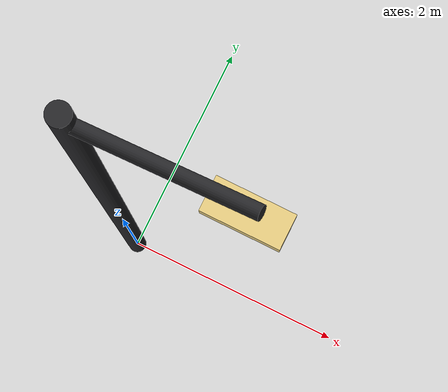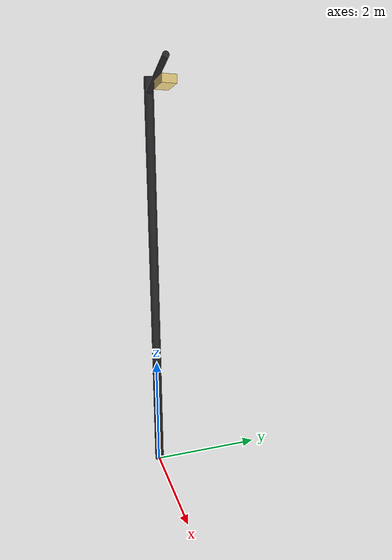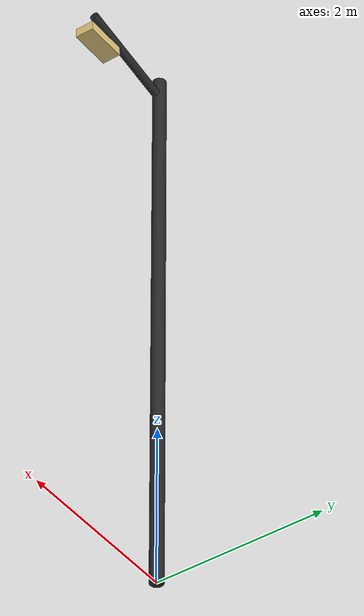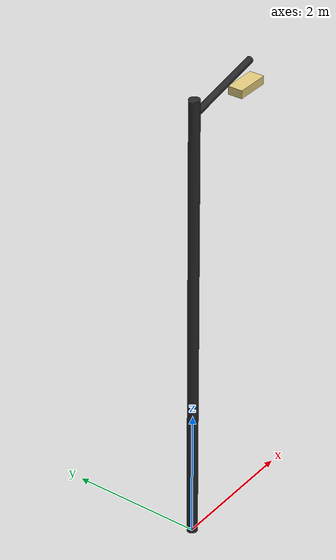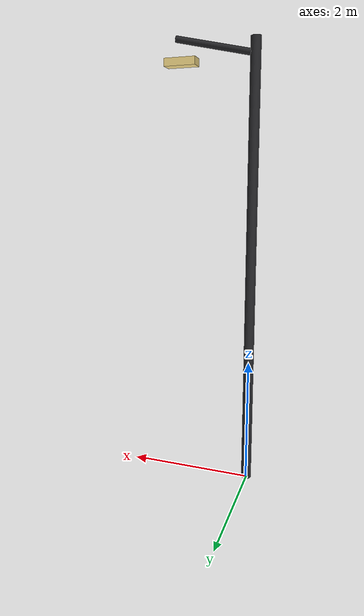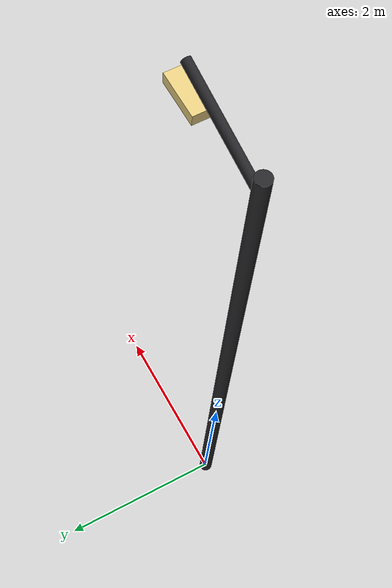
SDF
<?xml version="1.0"?>
<!-- 가로등 (7m 폴 + 웜화이트 포인트 라이트) — 야간 도시의 빛 웅덩이.
     불빛 아래는 보이고, 사이는 어둡다 — night_mode/thermal 툴 유도 환경. -->
<sdf version="1.9">
  <model name="streetlight">
    <static>true</static>
    <link name="pole">
      <visual name="pole_v">
        <pose>0 0 3.5 0 0 0</pose>
        <geometry><cylinder><radius>0.08</radius><length>7</length></cylinder></geometry>
        <material><diffuse>0.15 0.15 0.16 1</diffuse></material>
      </visual>
      <visual name="arm">
        <pose>0.6 0 6.9 0 1.35 0</pose>
        <geometry><cylinder><radius>0.05</radius><length>1.3</length></cylinder></geometry>
        <material><diffuse>0.15 0.15 0.16 1</diffuse></material>
      </visual>
      <visual name="lamp">
        <pose>1.15 0 6.7 0 0 0</pose>
        <geometry><box><size>0.5 0.22 0.12</size></box></geometry>
        <material><emissive>0.9 0.75 0.45 1</emissive><diffuse>0.9 0.8 0.5 1</diffuse></material>
      </visual>
      <light name="lamp_light" type="point">
        <pose>1.15 0 6.55 0 0 0</pose>
        <diffuse>0.95 0.8 0.55 1</diffuse>
        <specular>0.2 0.18 0.12 1</specular>
        <attenuation><range>26</range><constant>0.25</constant>
          <linear>0.045</linear><quadratic>0.0035</quadratic></attenuation>
        <cast_shadows>false</cast_shadows>
        <intensity>2.4</intensity>
      </light>
    </link>
  </model>
</sdf>
